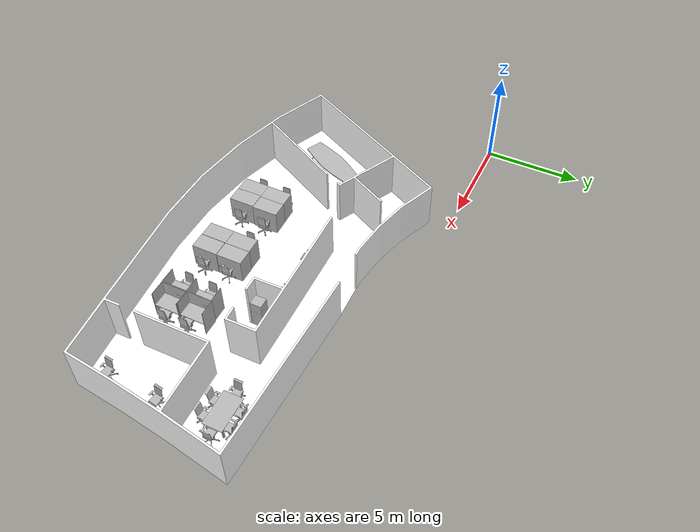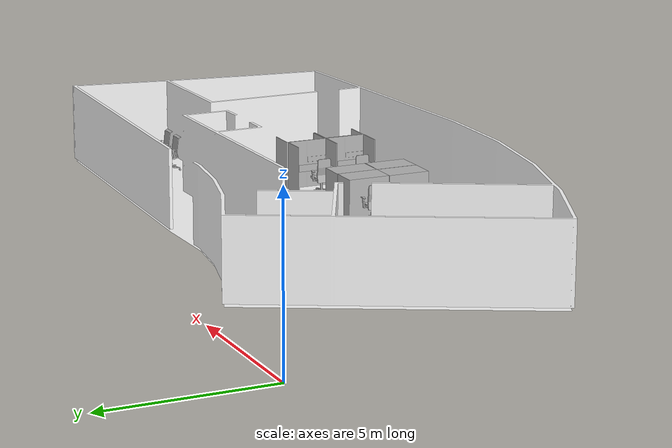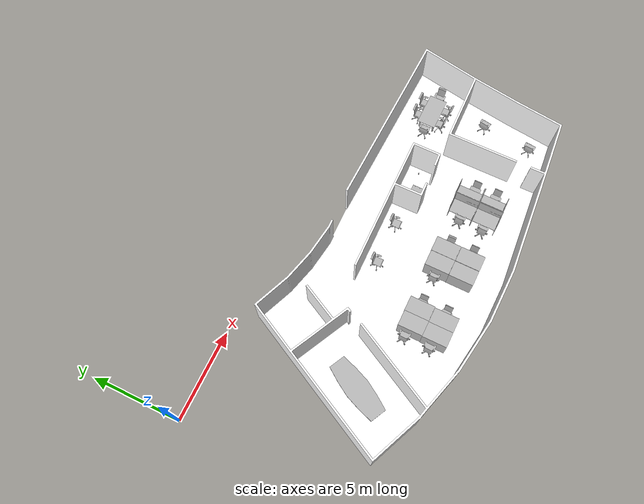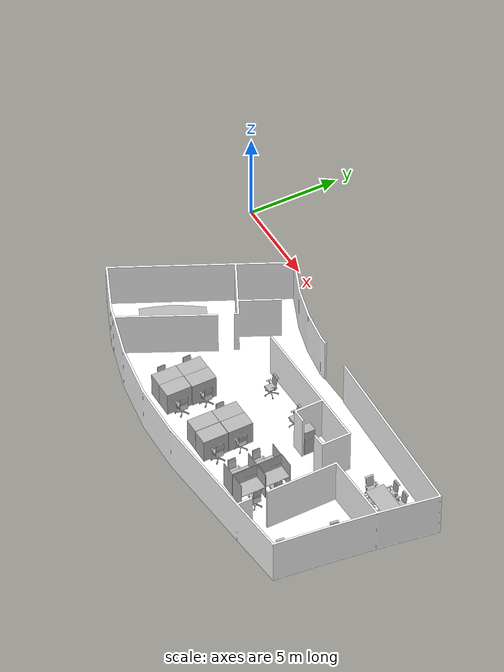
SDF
<sdf version="1.6">
 <world name="sim_world">
  <physics name="1ms" type="ode">
   <max_step_size>0.001</max_step_size>
   <real_time_factor>1.0</real_time_factor>
  </physics>
  <plugin filename="libignition-gazebo-physics-system.so" name="ignition::gazebo::systems::Physics"/>
  <plugin filename="libignition-gazebo-user-commands-system.so" name="ignition::gazebo::systems::UserCommands"/>
  <plugin filename="libignition-gazebo-scene-broadcaster-system.so" name="ignition::gazebo::systems::SceneBroadcaster"/>
  <scene><ambient>1 1 1</ambient><background>0.8 0.8 0.8</background><grid>false</grid></scene>
  <light name="sun" type="directional">
   <pose>0 0 10 0 0 0</pose>
   <diffuse>1 1 1 1</diffuse>
   <specular>0.2 0.2 0.2 1</specular>
   <attenuation>
    <range>1000</range>
    <constant>0.09</constant>
    <linear>0.001</linear>
    <quadratic>0.001</quadratic>
   </attenuation>
   <direction>-0.5 0.1 -0.9</direction>
  </light>
  <include>
   <name>Fridge</name>
   <uri>model://Fridge</uri>
   <pose>15.988145328136557 -5.750839262070037 0 0 0 1.5707</pose>
   <static>True</static>
  </include>
  <include>
   <name>OfficeChairGrey</name>
   <uri>model://OfficeChairGrey</uri>
   <pose>14.25575798385424 -5.546939351620108 0 0 0 0.01649999999999996</pose>
   <static>True</static>
  </include>
  <include>
   <name>SmallCubicle</name>
   <uri>model://SmallCubicle</uri>
   <pose>10.225911509914997 -8.526615785243605 0 0 0 1.5707</pose>
   <static>True</static>
  </include>
  <include>
   <name>SmallCubicle_2</name>
   <uri>model://SmallCubicle</uri>
   <pose>10.183296208528093 -9.890381619078704 0 0 0 1.5707</pose>
   <static>True</static>
  </include>
  <include>
   <name>SmallCubicle_3</name>
   <uri>model://SmallCubicle</uri>
   <pose>13.810743847321321 -9.831106223705028 0 0 0 1.5707</pose>
   <static>True</static>
  </include>
  <include>
   <name>SmallCubicle_4</name>
   <uri>model://SmallCubicle</uri>
   <pose>9.391493072925952 -8.541963727519024 0 0 0 -1.5709</pose>
   <static>True</static>
  </include>
  <include>
   <name>SmallCubicle_5</name>
   <uri>model://SmallCubicle</uri>
   <pose>9.36992299189023 -9.890178447200816 0 0 0 4.7123</pose>
   <static>True</static>
  </include>
  <include>
   <name>SmallCubicle_6</name>
   <uri>model://SmallCubicle</uri>
   <pose>12.9440464782329 -9.827406802428492 0 0 0 4.7123</pose>
   <static>True</static>
  </include>
  <include>
   <name>SmallCubicle_7</name>
   <uri>model://SmallCubicle</uri>
   <pose>12.955153207557416 -8.471810171183453 0 0 0 -1.5709</pose>
   <static>True</static>
  </include>
  <include>
   <name>SmallCubicle_8</name>
   <uri>model://SmallCubicle</uri>
   <pose>13.810743847321321 -8.460694976364024 0 0 0 1.5707</pose>
   <static>True</static>
  </include>
  <include>
   <name>BigCubicle</name>
   <uri>model://BigCubicle</uri>
   <pose>17.319691488336666 -8.342677511796122 0 0 0 1.5707</pose>
   <static>True</static>
  </include>
  <include>
   <name>BigCubicle_2</name>
   <uri>model://BigCubicle</uri>
   <pose>17.350328114423117 -9.715696131570017 0 0 0 1.5707</pose>
   <static>True</static>
  </include>
  <include>
   <name>BigCubicle_3</name>
   <uri>model://BigCubicle</uri>
   <pose>16.480625494640943 -9.730028214455997 0 0 0 -1.5709</pose>
   <static>True</static>
  </include>
  <include>
   <name>BigCubicle_4</name>
   <uri>model://BigCubicle</uri>
   <pose>16.48540849926621 -8.382482268872248 0 0 0 -1.5709</pose>
   <static>True</static>
  </include>
  <include>
   <name>OfficeChairGrey_2</name>
   <uri>model://OfficeChairGrey</uri>
   <pose>20.8759104529405 -3.9703171137182056 0 0 0 -9.999999999998899e-05</pose>
   <static>True</static>
  </include>
  <include>
   <name>OfficeChairGrey_3</name>
   <uri>model://OfficeChairGrey</uri>
   <pose>21.680132469578517 -3.9703171137182056 0 0 0 -9.999999999998899e-05</pose>
   <static>True</static>
  </include>
  <include>
   <name>OfficeChairGrey_4</name>
   <uri>model://OfficeChairGrey</uri>
   <pose>22.188062164297264 -4.512108788084869 0 0 0 -1.5709</pose>
   <static>True</static>
  </include>
  <include>
   <name>OfficeChairGrey_5</name>
   <uri>model://OfficeChairGrey</uri>
   <pose>21.66320147975456 -5.07083145227549 0 0 0 3.1414999999999997</pose>
   <static>True</static>
  </include>
  <include>
   <name>OfficeChairGrey_6</name>
   <uri>model://OfficeChairGrey</uri>
   <pose>20.816651988556647 -5.036969472627574 0 0 0 3.1414999999999997</pose>
   <static>True</static>
  </include>
  <include>
   <name>OfficeChairGrey_7</name>
   <uri>model://OfficeChairGrey</uri>
   <pose>20.257929324366025 -4.529039777908827 0 0 0 1.5707</pose>
   <static>True</static>
  </include>
  <include>
   <name>OfficeChairGrey_8</name>
   <uri>model://OfficeChairGrey</uri>
   <pose>14.205616857490586 -8.518074100877419 0 0 0 -1.5709</pose>
   <static>True</static>
  </include>
  <include>
   <name>OfficeChairGrey_9</name>
   <uri>model://OfficeChairGrey</uri>
   <pose>21.993355781321743 -7.517359481837455 0 0 0 1.4189</pose>
   <static>True</static>
  </include>
  <include>
   <name>OfficeChairGrey_10</name>
   <uri>model://OfficeChairGrey</uri>
   <pose>21.731416437755286 -10.29278045422472 0 0 0 1.4598</pose>
   <static>True</static>
  </include>
  <include>
   <name>OfficeChairBlue</name>
   <uri>model://OfficeChairBlue</uri>
   <pose>8.867969936579339 -8.374719410037965 0 0 0 1.5707</pose>
   <static>True</static>
  </include>
  <include>
   <name>OfficeChairBlue_2</name>
   <uri>model://OfficeChairBlue</uri>
   <pose>8.853637853693357 -9.784393622780726 0 0 0 1.5707</pose>
   <static>True</static>
  </include>
  <include>
   <name>OfficeChairBlue_3</name>
   <uri>model://OfficeChairBlue</uri>
   <pose>10.702933682710107 -8.503742017991438 0 0 0 4.7123</pose>
   <static>True</static>
  </include>
  <include>
   <name>OfficeChairBlue_4</name>
   <uri>model://OfficeChairBlue</uri>
   <pose>10.698159143579753 -9.870411516581347 0 0 0 4.7123</pose>
   <static>True</static>
  </include>
  <include>
   <name>OfficeChairBlue_5</name>
   <uri>model://OfficeChairBlue</uri>
   <pose>12.456662539665526 -8.470294847594209 0 0 0 1.5707</pose>
   <static>True</static>
  </include>
  <include>
   <name>OfficeChairBlue_6</name>
   <uri>model://OfficeChairBlue</uri>
   <pose>14.310741373307545 -9.832181341558849 0 0 0 -1.5709</pose>
   <static>True</static>
  </include>
  <include>
   <name>OfficeChairBlue_7</name>
   <uri>model://OfficeChairBlue</uri>
   <pose>16.02188879085571 -9.773041394103762 0 0 0 1.5707</pose>
   <static>True</static>
  </include>
  <include>
   <name>OfficeChairBlue_8</name>
   <uri>model://OfficeChairBlue</uri>
   <pose>16.041003878366954 -8.435044526780727 0 0 0 1.5707</pose>
   <static>True</static>
  </include>
  <include>
   <name>OfficeChairBlue_9</name>
   <uri>model://OfficeChairBlue</uri>
   <pose>17.804290279077996 -8.544952047222951 0 0 0 -1.5709</pose>
   <static>True</static>
  </include>
  <include>
   <name>OfficeChairBlue_10</name>
   <uri>model://OfficeChairBlue</uri>
   <pose>17.83296291034487 -9.72525367532564 0 0 0 -1.5709</pose>
   <static>True</static>
  </include>
  <include>
   <name>OfficeChairGrey_11</name>
   <uri>model://OfficeChairGrey</uri>
   <pose>11.842888762062305 -5.564640701481056 0 0 0 0.015900000000000025</pose>
   <static>True</static>
  </include>
  <include>
   <name>ConfTable</name>
   <uri>model://ConfTable</uri>
   <pose>5.248606845427052 -7.381911563245789 0 0 0 1.1016</pose>
   <static>True</static>
  </include>
  <include>
   <name>RecTable</name>
   <uri>model://RecTable</uri>
   <pose>21.23146123924362 -4.50364329317289 0 0 0 -9.999999999998899e-05</pose>
   <static>True</static>
  </include>
  <include>
   <name>Coke</name>
   <uri>model://Coke</uri>
   <pose>17.676071893141163 -5.301397671698154 0 0 0 1.5707</pose>
   <static>False</static>
  </include>
  <model name="main_door">
   <pose>13.131950836046645 -2.579487092649509 0 0 0 -3.120269390429785</pose>
   <link name="right">
    <pose>-0.473864332736097 0 1.11 0 0 0</pose>
    <visual name="right">
     <material>
      <ambient>120 60 0 0.6</ambient>
      <diffuse>120 60 0 0.6</diffuse>
      <pbr><metal><metalness>0.0</metalness></metal></pbr>
     </material>
     <geometry><box><size>0.937728665472194 0.03 2.2</size></box></geometry>
    </visual>
    <collision name="right">
     <surface><contact><collide_bitmask>0x02</collide_bitmask></contact></surface>
     <geometry><box><size>0.937728665472194 0.03 2.2</size></box></geometry>
    </collision>
    <inertial>
     <mass>50.0</mass>
     <inertia><ixx>20.17041666666667</ixx><iyy>23.83056270853443</iyy><izz>3.6676460418677586</izz></inertia>
    </inertial>
   </link>
   <joint name="right_joint" type="revolute">
    <parent>world</parent>
    <child>right</child>
    <axis><xyz>0 0 1</xyz><limit><lower>0</lower><upper>1.57</upper></limit></axis>
    <pose>-0.473864332736097 0 0 0 0 0</pose>
   </joint>
   <link name="left">
    <pose>0.473864332736097 0 1.11 0 0 0</pose>
    <visual name="left">
     <material>
      <ambient>120 60 0 0.6</ambient>
      <diffuse>120 60 0 0.6</diffuse>
      <pbr><metal><metalness>0.0</metalness></metal></pbr>
     </material>
     <geometry><box><size>0.937728665472194 0.03 2.2</size></box></geometry>
    </visual>
    <collision name="left">
     <surface><contact><collide_bitmask>0x02</collide_bitmask></contact></surface>
     <geometry><box><size>0.937728665472194 0.03 2.2</size></box></geometry>
    </collision>
    <inertial>
     <mass>50.0</mass>
     <inertia><ixx>20.17041666666667</ixx><iyy>23.83056270853443</iyy><izz>3.6676460418677586</izz></inertia>
    </inertial>
   </link>
   <joint name="left_joint" type="revolute">
    <parent>world</parent>
    <child>left</child>
    <axis><xyz>0 0 1</xyz><limit><lower>-1.57</lower><upper>0</upper></limit></axis>
    <pose>0.473864332736097 0 0 0 0 0</pose>
   </joint>
   <plugin filename="libdoor.so" name="door">
    <v_max_door>0.5</v_max_door>
    <a_max_door>0.3</a_max_door>
    <a_nom_door>0.15</a_nom_door>
    <dx_min_door>0.01</dx_min_door>
    <f_max_door>500.0</f_max_door>
    <door left_joint_name="left_joint" name="main_door" right_joint_name="right_joint" type="DoubleSwingDoor"/>
   </plugin>
  </model>
  <model name="coe_door">
   <pose>8.077686357313898 -5.898342045416362 0 0 0 1.1560010438234292</pose>
   <plugin filename="libdoor.so" name="door">
    <v_max_door>0.5</v_max_door>
    <a_max_door>0.3</a_max_door>
    <a_nom_door>0.15</a_nom_door>
    <dx_min_door>0.01</dx_min_door>
    <f_max_door>500.0</f_max_door>
    <door left_joint_name="left_joint" name="coe_door" right_joint_name="empty_joint" type="SwingDoor"/>
   </plugin>
   <link name="left">
    <pose>0 0 1.11 0 0 0</pose>
    <visual name="left">
     <material>
      <ambient>120 60 0 0.6</ambient>
      <diffuse>120 60 0 0.6</diffuse>
      <pbr><metal><metalness>0.0</metalness></metal></pbr>
     </material>
     <geometry><box><size>0.8766026166317483 0.03 2.2</size></box></geometry>
    </visual>
    <collision name="left">
     <surface><contact><collide_bitmask>0x02</collide_bitmask></contact></surface>
     <geometry><box><size>0.8766026166317483 0.03 2.2</size></box></geometry>
    </collision>
    <inertial>
     <mass>50.0</mass>
     <inertia><ixx>20.17041666666667</ixx><iyy>23.36846728119012</iyy><izz>3.20555061452345</izz></inertia>
    </inertial>
   </link>
   <joint name="left_joint" type="revolute">
    <parent>world</parent>
    <child>left</child>
    <axis><xyz>0 0 1</xyz><limit><lower>-1.57</lower><upper>0</upper></limit></axis>
    <pose>0.44330130831587417 0 0 0 0 0</pose>
   </joint>
  </model>
  <model name="hardware_door">
   <pose>19.450062912168402 -10.319158936370446 0 0 0 -1.5760607387686447</pose>
   <plugin filename="libdoor.so" name="door">
    <v_max_door>0.5</v_max_door>
    <a_max_door>0.3</a_max_door>
    <a_nom_door>0.15</a_nom_door>
    <dx_min_door>0.01</dx_min_door>
    <f_max_door>500.0</f_max_door>
    <door left_joint_name="left_joint" name="hardware_door" right_joint_name="empty_joint" type="SwingDoor"/>
   </plugin>
   <link name="left">
    <pose>0 0 1.11 0 0 0</pose>
    <visual name="left">
     <material>
      <ambient>120 60 0 0.6</ambient>
      <diffuse>120 60 0 0.6</diffuse>
      <pbr><metal><metalness>0.0</metalness></metal></pbr>
     </material>
     <geometry><box><size>0.8792617700206885 0.03 2.2</size></box></geometry>
    </visual>
    <collision name="left">
     <surface><contact><collide_bitmask>0x02</collide_bitmask></contact></surface>
     <geometry><box><size>0.8792617700206885 0.03 2.2</size></box></geometry>
    </collision>
    <inertial>
     <mass>50.0</mass>
     <inertia><ixx>20.17041666666667</ixx><iyy>23.387921917582982</iyy><izz>3.225005250916309</izz></inertia>
    </inertial>
   </link>
   <joint name="left_joint" type="revolute">
    <parent>world</parent>
    <child>left</child>
    <axis><xyz>0 0 1</xyz><limit><lower>-1.57</lower><upper>0</upper></limit></axis>
    <pose>0.44463088501034426 0 0 0 0 0</pose>
   </joint>
  </model>
  <include><name>building_L1</name><uri>model://building_L1</uri></include>
  <plugin filename="libcrowd_simulator_ign.so" name="crowd_simulator">
   <behavior_file>behavior_file.xml</behavior_file>
   <scene_file>scene_file.xml</scene_file>
   <model_type>
    <typename>human</typename>
    <filename>walk.dae</filename>
    <initial_pose>0 0 1 0 0 0</initial_pose>
    <animation>walk</animation>
    <animation_speed>0.2</animation_speed>
    <model_file_path>https://fuel.ignitionrobotics.org/1.0/Mingfei/models/actor</model_file_path>
   </model_type>
   <model_type>
    <typename>injuredwalking</typename>
    <filename>/usr/share/gazebo-9/media/models/moonwalk.dae</filename>
    <initial_pose>0 0 0 0 0 0</initial_pose>
    <animation>walking</animation>
    <animation_speed>0.7</animation_speed>
    <model_file_path>https://fuel.ignitionrobotics.org/1.0/OpenRobotics/models/Male%20visitor</model_file_path>
   </model_type>
   <model_type>
    <typename>running</typename>
    <filename>/usr/share/gazebo-9/media/models/run.dae</filename>
    <initial_pose>0 0 1 0 0 0</initial_pose>
    <animation>walk</animation>
    <animation_speed>0.15</animation_speed>
    <model_file_path>https://fuel.ignitionrobotics.org/1.0/Mingfei/models/actor</model_file_path>
   </model_type>
   <update_time_step>0.01</update_time_step>
   <external_agent>WhiteCabinet</external_agent>
   <external_agent>Drawer_2</external_agent>
  </plugin>
 </world>
</sdf>

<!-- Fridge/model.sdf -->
<sdf version="1.6">
  <model name="Fridge">
   <static>true</static>
    <link name="body">
      <pose>0 0 0 0 0 0</pose>

      <visual name="visual">
        <geometry>
          <mesh>
            <uri>model://Fridge/meshes/Fridge.obj</uri>
          </mesh>
        </geometry>
      </visual>

      <collision name="collision">
        <geometry>
          <mesh>
            <uri>model://Fridge/meshes/Fridge_Col.obj</uri>
          </mesh>
        </geometry>
      </collision>

    </link>
  </model>
</sdf>

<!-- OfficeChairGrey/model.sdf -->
<sdf version="1.6">
  <model name="OfficeChairGrey">
   <static>true</static>
    <link name="body">
      <pose>0 0 0 0 0 0</pose>

      <visual name="visual">
        <geometry>
          <mesh>
            <uri>model://OfficeChairGrey/meshes/OfficeChairGrey.obj</uri>
          </mesh>
        </geometry>
      </visual>

      <collision name="collision">
        <geometry>
          <mesh>
            <uri>model://OfficeChairGrey/meshes/OfficeChairGrey_Col.obj</uri>
          </mesh>
        </geometry>
      </collision>

    </link>
  </model>
</sdf>

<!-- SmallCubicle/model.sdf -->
<sdf version="1.6">
  <model name="SmallCubicle">
   <static>true</static>
    <link name="body">
      <pose>0 0 0 0 0 0</pose>

      <visual name="visual">
        <geometry>
          <mesh>
            <uri>model://SmallCubicle/meshes/SmallCubicle.obj</uri>
          </mesh>
        </geometry>
      </visual>

      <collision name="collision">
        <geometry>
          <mesh>
            <uri>model://SmallCubicle/meshes/SmallCubicle_Col.obj</uri>
          </mesh>
        </geometry>
      </collision>

    </link>
  </model>
</sdf>

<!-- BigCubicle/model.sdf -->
<sdf version="1.6">
  <model name="BigCubicle">
   <static>true</static>
    <link name="body">
      <pose>0 0 0 0 0 0</pose>

      <visual name="visual">
        <geometry>
          <mesh>
            <uri>model://BigCubicle/meshes/BigCubicle.obj</uri>
          </mesh>
        </geometry>
      </visual>

      <collision name="collision">
        <geometry>
          <mesh>
            <uri>model://BigCubicle/meshes/BigCubicle_Col.obj</uri>
          </mesh>
        </geometry>
      </collision>

    </link>
  </model>
</sdf>

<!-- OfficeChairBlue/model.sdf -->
<sdf version="1.6">
  <model name="OfficeChairBlue">
   <static>true</static>
    <link name="body">
      <pose>0 0 0 0 0 0</pose>

      <visual name="visual">
        <geometry>
          <mesh>
            <uri>model://OfficeChairBlue/meshes/OfficeChairBlue.obj</uri>
          </mesh>
        </geometry>
      </visual>

      <collision name="collision">
        <geometry>
          <mesh>
            <uri>model://OfficeChairBlue/meshes/OfficeChairBlue_Col.obj</uri>
          </mesh>
        </geometry>
      </collision>

    </link>
  </model>
</sdf>

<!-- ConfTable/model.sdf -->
<sdf version="1.6">
  <model name="ConfTable">
   <static>true</static>
    <link name="body">
      <pose>0 0 0 0 0 0</pose>

      <visual name="visual">
        <geometry>
          <mesh>
            <uri>model://ConfTable/meshes/ConfTable.obj</uri>
          </mesh>
        </geometry>
      </visual>

      <collision name="collision">
        <geometry>
          <mesh>
            <uri>model://ConfTable/meshes/ConfTable_Col.obj</uri>
          </mesh>
        </geometry>
      </collision>

    </link>
  </model>
</sdf>

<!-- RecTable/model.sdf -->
<sdf version="1.6">
  <model name="RecTable">
   <static>true</static>
    <link name="body">
      <pose>0 0 0 0 0 0</pose>

      <visual name="visual">
        <geometry>
          <mesh>
            <uri>model://RecTable/meshes/RecTable.obj</uri>
          </mesh>
        </geometry>
      </visual>

      <collision name="collision">
        <geometry>
          <mesh>
            <uri>model://RecTable/meshes/RecTable_Col.obj</uri>
          </mesh>
        </geometry>
      </collision>

    </link>
  </model>
</sdf>

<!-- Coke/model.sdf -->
<sdf version="1.6">
  <model name='Coke'>
    <static>true</static>
    <link name="body">
      <pose>0 0 0 0 0 0</pose>

        <visual name="visual">
          <geometry>
            <mesh><uri>model://Coke/meshes/coke.obj</uri></mesh>
          </geometry>
        </visual>

        <collision name="collision">
          <geometry>
            <mesh><uri>model://Coke/meshes/coke.obj</uri></mesh>
          </geometry>
        </collision>

        <!-- TODO: Replace with accurate values of mass and inertia -->
        <inertial>
          <mass>1.0</mass>
          <inertia>
            <ixx>0.003366666666666667</ixx>
            <iyy>0.0008666666666666667</iyy>
            <izz>0.0041666666666666675</izz>
          </inertia>
        </inertial>

    </link>

  </model>
</sdf>

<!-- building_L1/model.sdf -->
<sdf version="1.7">
  <model name="building_L1">
    <static>true</static>
    <link name="floor_1">
      <visual name="visual">
        <geometry>
          <mesh>
            <uri>model://building_L1/meshes/floor_1.obj</uri>
          </mesh>
        </geometry>
        <material>
          <diffuse>1.0 1.0 1.0 1.0</diffuse>
          <specular>0.1 0.1 0.1 1.0</specular>
          <pbr>
            <metal>
              <metalness>0.0</metalness>
              <albedo_map>model://building_L1/meshes/blue_linoleum.png</albedo_map>
            </metal>
          </pbr>
        </material>
      </visual>
      <collision name="collision">
        <geometry>
          <mesh>
            <uri>model://building_L1/meshes/floor_1.obj</uri>
          </mesh>
        </geometry>
        <surface>
          <contact>
            <collide_bitmask>0x01</collide_bitmask>
          </contact>
        </surface>
      </collision>
    </link>
    <link name="wall_1">
      <visual name="wall_1">
        <geometry>
          <mesh>
            <uri>model://building_L1/meshes/wall_1.obj</uri>
          </mesh>
        </geometry>
        <material>
          <diffuse>1.0 1.0 1.0 1.0</diffuse>
          <specular>0.1 0.1 0.1 1.0</specular>
          <pbr>
            <metal>
              <metalness>0.0</metalness>
              <albedo_map>model://building_L1/meshes/default.png</albedo_map>
            </metal>
          </pbr>
        </material>
      </visual>
      <collision name="collision">
        <geometry>
          <mesh>
            <uri>model://building_L1/meshes/wall_1.obj</uri>
          </mesh>
        </geometry>
        <surface>
          <contact>
            <collide_bitmask>0x01</collide_bitmask>
          </contact>
        </surface>
      </collision>
    </link>
  </model>
</sdf>
